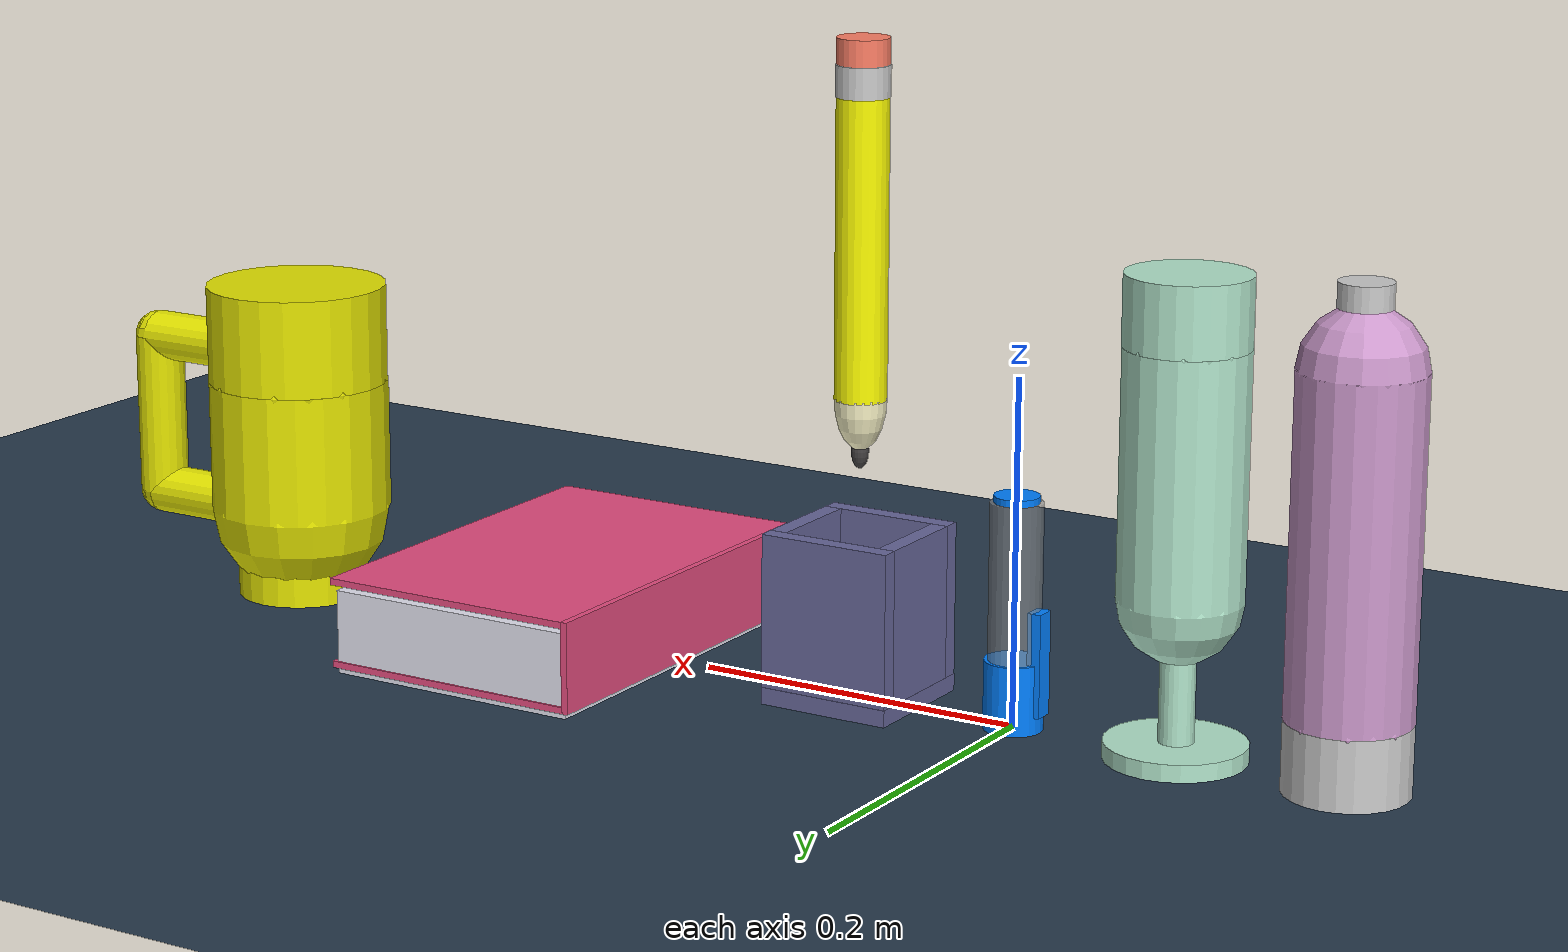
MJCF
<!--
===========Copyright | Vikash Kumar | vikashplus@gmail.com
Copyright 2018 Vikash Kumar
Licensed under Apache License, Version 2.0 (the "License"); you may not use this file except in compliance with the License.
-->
<mujoco model="house hold objects">

	<include file='../utils/basic_scene.xml'/>
	<compiler angle='radian'/>

    <worldbody>
		<body name="bottle" pos="-.2 0 0" >
			<include file='include_bottle.xml'/>
			<freejoint name="Jbottle"/>
		</body>

		<body name="glass" pos="-.1 0 0">
			<include file='include_glass.xml'/>
			<freejoint name="Jglass"/>
		</body>

		<body name="pen" pos="0 0 0">
			<include file='include_pen.xml'/>
			<freejoint name='Jpen'/>
        </body>

		<body name="pencil" pos=".1 0 0.2">
			<include file='include_pencil.xml'/>
			<freejoint name='Jpencil'/>
        </body>

		<body name="container" pos="0.1 0 0">
			<include file='include_container.xml'/>
			<freejoint name="Jcontainer"/>
		</body>

		<body name="book" pos="0.3 0 0.002">
			<include file='include_book.xml'/>
			<freejoint name="Jbook"/>
		</body>

		<body name="mug" pos="0.5 0 0">
			<include file='include_mug.xml'/>
			<freejoint name="Jmug"/>
		</body>

	</worldbody>
</mujoco>

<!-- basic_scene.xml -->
<mujocoinclude>

    <visual>
        <quality shadowsize="4048"/>
    </visual>

    <asset>
        <texture name="skybox" type="skybox" builtin="gradient" rgb1=".08 .09 .10" rgb2="0 0 0"
               width="800" height="800" mark="random" markrgb=".8 .8 .8"/>
        <texture name="texplane" type="2d" builtin="checker" rgb1=".2 .3 .4" rgb2=".1 0.15 0.2" width="512" height="512" markrgb='.1 .1 .1' mark='random' random='.05'/>
        <material name='MatPlane' reflectance='0.05' texture="texplane" texrepeat="1 1" texuniform="true"/>
    </asset>

    <worldbody>
        <light directional='true' diffuse='.8 .8 .8' specular='0.3 0.3 0.3' pos='-1 -1 1' dir='1 1 -1'/>
		<geom name='floor' pos='0 0 0' size='2 2 .1' conaffinity='1' contype='1' type='plane' material="MatPlane" condim='3'/>
    </worldbody>
</mujocoinclude>

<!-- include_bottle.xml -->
<mujocoinclude>
	<geom type="capsule"  size="0.0351 .095" rgba="0.8 0.6 0.8 1" pos="0 0 .135"/>
	<geom type="cylinder" size="0.0351 .020" rgba="0.8 0.8 0.8 1" pos="0 0 .020"/>
	<geom type="cylinder" size="0.0150 .007" rgba="0.8 0.8 0.8 1" pos="0 0 .270"/>
	<site name="bottle_handle" pos="0 0 .13" group="2"/>
</mujocoinclude>

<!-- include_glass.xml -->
<mujocoinclude>
	<geom type="cylinder" size="0.0401 .005" rgba="0.7 0.9 0.8 1" pos="0 0 .005"/>
	<geom type="cylinder" size="0.0100 .025" rgba="0.7 0.9 0.8 1" pos="0 0 .035"/>
	<geom type="capsule"  size="0.0351 .07"  rgba="0.7 0.9 0.8 1" pos="0 0 .16"/>
	<geom type="cylinder" size="0.0351 .020" rgba="0.7 0.9 0.8 1" pos="0 0 .25"/>
	<site name="glass_handle" pos="0 0 .15" group="2"/>
</mujocoinclude>

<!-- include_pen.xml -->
<mujocoinclude>
	<geom name="pen_pen" type="cylinder" size="0.015 0.065" condim="4" pos='0 0 .065' rgba=".6 .6 .6 .6" />
	<geom name="pen_top" type="cylinder" size="0.017 0.020" condim="4" pos="0 0 .0195" rgba="0 .5 1 1"/>
	<geom name="pen_bot" type="cylinder" size="0.013 0.002" pos="0 0 0.132" rgba="0 .5 1 1"/>
	<geom name="pen_cli" type="box" size="0.004 0.006 0.03" pos="-.015 0 .0395" rgba="0 .5 1 1"/>
</mujocoinclude>

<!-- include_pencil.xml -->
<mujocoinclude>
    <geom name="pencil_rubber" type="cylinder" size="0.015 0.009" condim="3" pos='0 0 .17' rgba="1 .5 .4 1" />
    <geom name="pencil_ring" type="cylinder" size="0.0155 0.009" condim="3" pos='0 0 .155' rgba=".8 .8 .8 1" />
    <geom name="pencil_pencil" type="cylinder" size="0.015 0.09" condim="4" pos='0 0 .065' rgba="1 1 0 1" />
    <geom name="pencil_cone" type="ellipsoid" size="0.015 0.015 .03" condim="4" pos="0 0 -.0245" rgba="1 .98 .8 1"/>
    <geom name="pencil_tip" type="ellipsoid" size="0.005 0.005 .01" condim="4" pos="0 0 -.055" rgba=".27 .26 .26 1"/>
</mujocoinclude>

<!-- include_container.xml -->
<mujocoinclude>
	<geom name="container_base" type="box"  rgba='.4 .4 .6 1' size="0.0401 0.0401 0.005" pos="0 0 0.005" condim="4" friction="1 1 .001"/>
	<geom name="container_right" type="box" rgba='.4 .4 .6 1' size="0.005 0.03 0.05" pos="0.035 0 0.05" condim="4" friction="1 1 .001"/>
	<geom name="container_left" type="box" rgba='.4 .4 .6 1' size="0.005 0.03 0.05" pos="-.035 0 0.05" condim="4" friction="1 1 .001"/>
	<geom name="container_front" type="box" rgba='.4 .4 .6 1' size="0.04 0.005 0.05" pos="0 0.035 0.05" condim="4" friction="1 1 .001"/>
	<geom name="container_back" type="box" rgba='.4 .4 .6 1' size="0.04 0.005 0.05" pos="0 -.035 0.05" condim="4" friction="1 1 .001"/>
</mujocoinclude>

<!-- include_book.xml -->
<mujocoinclude>
	<geom name="book_pages" type="box" rgba='.9 .9 .95 1' size="0.080 0.120 0.025" pos="0 0 0.022"/>
	<geom name="book_top_cover" type="box" rgba='.9 .3 .5 1' size="0.081 0.121 0.002" pos="0.003 0 0.052"/>
	<geom name="book_bottom_cover" type="box" rgba='.9 .3 .5 1' size="0.081 0.121 0.002" pos="0.002 0 0.002"/>
	<geom name="book_size_cover" type="box" rgba='.9 .3 .5 1' size="0.002 0.121 0.027" pos="-.08 0 0.027"/>
</mujocoinclude>

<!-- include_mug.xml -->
<mujocoinclude>
	<geom type="cylinder" size="0.0401 .010" rgba="0.9 0.9 0 1" pos="0 0 .010"/>
	<geom type="capsule"  size="0.0551 .040"  rgba="0.9 0.9 0 1" pos="0 0 .095"/>
	<geom type="cylinder" size="0.0551 .030" rgba="0.9 0.9 0 1" pos="0 0 .165"/>

	<geom type="capsule" size="0.015 .050" rgba="0.9 0.9 0 1" pos="0.11 0 .100"/>
	<geom type="capsule" size="0.015 .035" rgba="0.9 0.9 0 1" pos="0.075 0 .05" euler='0 1.57 0'/>
	<geom type="capsule" size="0.015 .035" rgba="0.9 0.9 0 1" pos="0.075 0 .15" euler='0 1.57 0'/>

	<site name="mug_handle" pos="0 0 .15" group="2"/>
</mujocoinclude>
